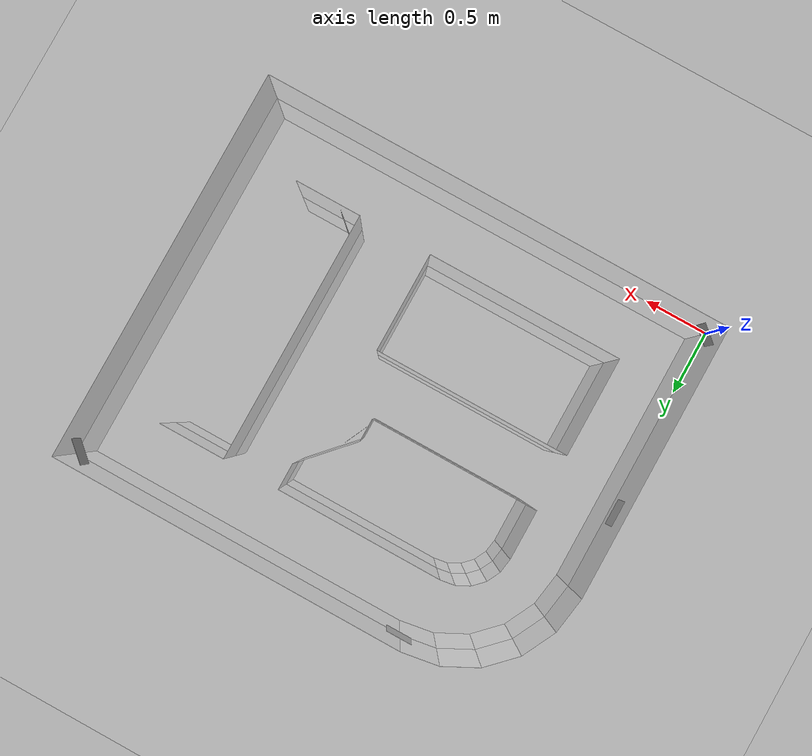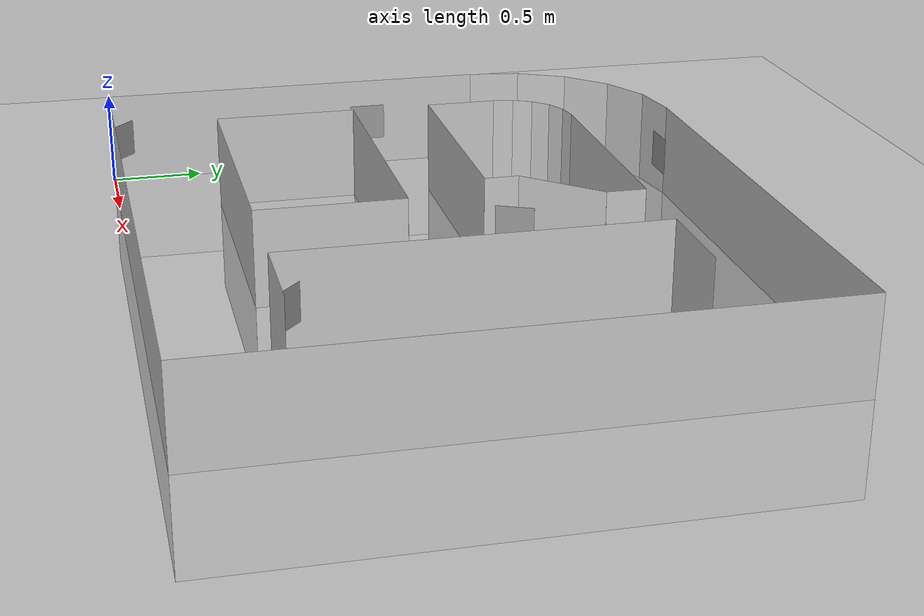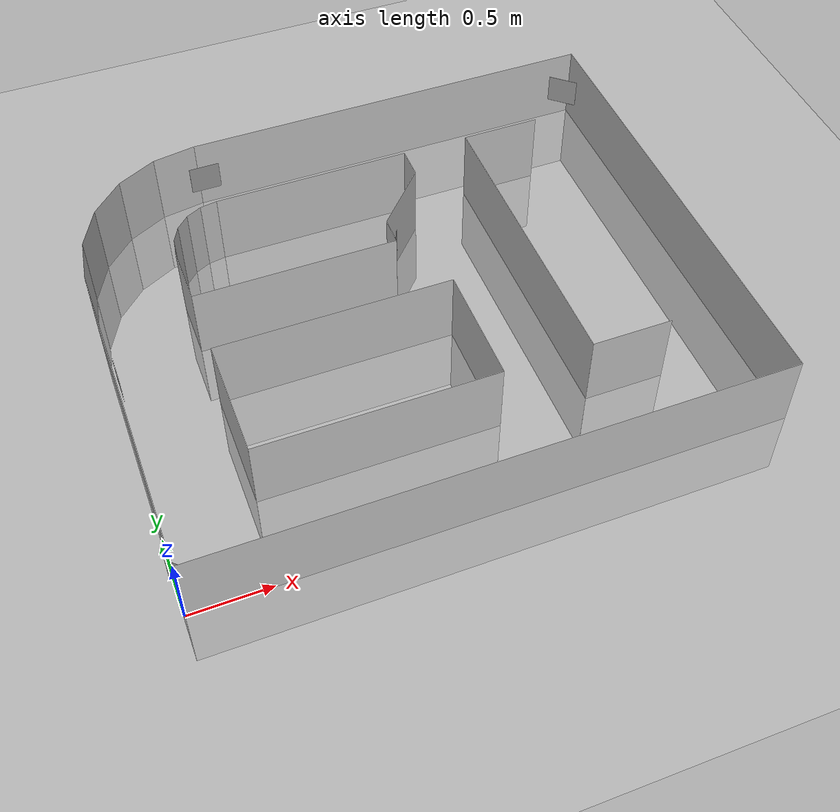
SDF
<sdf version="1.6">
 <world name="default">
  <light name="sun" type="directional">
   <pose>0 0 10 0 -0 0</pose>
   <diffuse>0.8 0.8 0.8 1</diffuse>
   <specular>0.1 0.1 0.1 1</specular>
   <attenuation>
    <range>1000</range>
    <constant>0.9</constant>
    <linear>0.01</linear>
    <quadratic>0.001</quadratic>
   </attenuation>
   <direction>-0.5 0.5 -1</direction>
  </light>
  <model name="ground_plane">
   <static>1</static>
   <link name="link">
    <collision name="collision">
     <geometry><plane><normal>0 0 1</normal><size>100 100</size></plane></geometry>
     <surface><friction><ode><mu>100</mu><mu2>50</mu2></ode></friction></surface>
    </collision>
    <visual name="visual">
     <cast_shadows>0</cast_shadows>
     <geometry><plane><normal>0 0 1</normal><size>100 100</size></plane></geometry>
     <material>
      <script><uri>file://media/materials/scripts/gazebo.material</uri><name>Gazebo/Grey</name></script>
     </material>
    </visual>
   </link>
  </model>
  <model name="wall_0">
   <static>1</static>
   <link name="link">
    <collision name="collision"><geometry><box><size>2.1336 0.001 1</size></box></geometry></collision>
    <visual name="visual">
     <geometry><box><size>2.1336 0.001 1</size></box></geometry>
     <material>
      <script><name>Gazebo/White</name><uri>file://media/materials/scripts/gazebo.material</uri></script>
     </material>
    </visual>
   </link>
   <pose>0 1.0668 0 0 -0 1.5708</pose>
  </model>
  <model name="wall_1">
   <static>1</static>
   <link name="link">
    <collision name="collision"><geometry><box><size>0.286088 0.001 1</size></box></geometry></collision>
    <visual name="visual">
     <geometry><box><size>0.286088 0.001 1</size></box></geometry>
     <material>
      <script><name>Gazebo/White</name><uri>file://media/materials/scripts/gazebo.material</uri></script>
     </material>
    </visual>
   </link>
   <pose>0.022377 2.27489 0 0 -0 1.41372</pose>
  </model>
  <model name="wall_2">
   <static>1</static>
   <link name="link">
    <collision name="collision"><geometry><box><size>0.286088 0.001 1</size></box></geometry></collision>
    <visual name="visual">
     <geometry><box><size>0.286088 0.001 1</size></box></geometry>
     <material>
      <script><name>Gazebo/White</name><uri>file://media/materials/scripts/gazebo.material</uri></script>
     </material>
    </visual>
   </link>
   <pose>0.109695 2.54362 0 0 -0 1.09956</pose>
  </model>
  <model name="wall_3">
   <static>1</static>
   <link name="link">
    <collision name="collision"><geometry><box><size>0.286088 0.001 1</size></box></geometry></collision>
    <visual name="visual">
     <geometry><box><size>0.286088 0.001 1</size></box></geometry>
     <material>
      <script><name>Gazebo/White</name><uri>file://media/materials/scripts/gazebo.material</uri></script>
     </material>
    </visual>
   </link>
   <pose>0.275783 2.77222 0 0 -0 0.785398</pose>
  </model>
  <model name="wall_4">
   <static>1</static>
   <link name="link">
    <collision name="collision"><geometry><box><size>0.286088 0.001 1</size></box></geometry></collision>
    <visual name="visual">
     <geometry><box><size>0.286088 0.001 1</size></box></geometry>
     <material>
      <script><name>Gazebo/White</name><uri>file://media/materials/scripts/gazebo.material</uri></script>
     </material>
    </visual>
   </link>
   <pose>0.504383 2.93831 0 0 -0 0.471239</pose>
  </model>
  <model name="wall_5">
   <static>1</static>
   <link name="link">
    <collision name="collision"><geometry><box><size>0.286088 0.001 1</size></box></geometry></collision>
    <visual name="visual">
     <geometry><box><size>0.286088 0.001 1</size></box></geometry>
     <material>
      <script><name>Gazebo/White</name><uri>file://media/materials/scripts/gazebo.material</uri></script>
     </material>
    </visual>
   </link>
   <pose>0.773119 3.02563 0 0 -0 0.15708</pose>
  </model>
  <model name="wall_6">
   <static>1</static>
   <link name="link">
    <collision name="collision"><geometry><box><size>2.74321 0.001 1</size></box></geometry></collision>
    <visual name="visual">
     <geometry><box><size>2.74321 0.001 1</size></box></geometry>
     <material>
      <script><name>Gazebo/White</name><uri>file://media/materials/scripts/gazebo.material</uri></script>
     </material>
    </visual>
   </link>
   <pose>2.286 3.04801 0 0 -0 0</pose>
  </model>
  <model name="wall_7">
   <static>1</static>
   <link name="link">
    <collision name="collision"><geometry><box><size>3.04801 0.001 1</size></box></geometry></collision>
    <visual name="visual">
     <geometry><box><size>3.04801 0.001 1</size></box></geometry>
     <material>
      <script><name>Gazebo/White</name><uri>file://media/materials/scripts/gazebo.material</uri></script>
     </material>
    </visual>
   </link>
   <pose>3.65761 1.524 0 0 0 -1.5708</pose>
  </model>
  <model name="wall_8">
   <static>1</static>
   <link name="link">
    <collision name="collision"><geometry><box><size>3.65761 0.001 1</size></box></geometry></collision>
    <visual name="visual">
     <geometry><box><size>3.65761 0.001 1</size></box></geometry>
     <material>
      <script><name>Gazebo/White</name><uri>file://media/materials/scripts/gazebo.material</uri></script>
     </material>
    </visual>
   </link>
   <pose>1.8288 0 0 0 0 -3.14159</pose>
  </model>
  <model name="wall_9">
   <static>1</static>
   <link name="link">
    <collision name="collision"><geometry><box><size>0.762002 0.001 1</size></box></geometry></collision>
    <visual name="visual">
     <geometry><box><size>0.762002 0.001 1</size></box></geometry>
     <material>
      <script><name>Gazebo/White</name><uri>file://media/materials/scripts/gazebo.material</uri></script>
     </material>
    </visual>
   </link>
   <pose>0.558801 0.939802 0 0 -0 1.5708</pose>
  </model>
  <model name="wall_10">
   <static>1</static>
   <link name="link">
    <collision name="collision"><geometry><box><size>1.4986 0.001 1</size></box></geometry></collision>
    <visual name="visual">
     <geometry><box><size>1.4986 0.001 1</size></box></geometry>
     <material>
      <script><name>Gazebo/White</name><uri>file://media/materials/scripts/gazebo.material</uri></script>
     </material>
    </visual>
   </link>
   <pose>1.3081 1.3208 0 0 -0 0</pose>
  </model>
  <model name="wall_11">
   <static>1</static>
   <link name="link">
    <collision name="collision"><geometry><box><size>0.762002 0.001 1</size></box></geometry></collision>
    <visual name="visual">
     <geometry><box><size>0.762002 0.001 1</size></box></geometry>
     <material>
      <script><name>Gazebo/White</name><uri>file://media/materials/scripts/gazebo.material</uri></script>
     </material>
    </visual>
   </link>
   <pose>2.0574 0.939802 0 0 0 -1.5708</pose>
  </model>
  <model name="wall_12">
   <static>1</static>
   <link name="link">
    <collision name="collision"><geometry><box><size>1.4986 0.001 1</size></box></geometry></collision>
    <visual name="visual">
     <geometry><box><size>1.4986 0.001 1</size></box></geometry>
     <material>
      <script><name>Gazebo/White</name><uri>file://media/materials/scripts/gazebo.material</uri></script>
     </material>
    </visual>
   </link>
   <pose>1.3081 0.558801 0 0 0 -3.14159</pose>
  </model>
  <model name="wall_13">
   <static>1</static>
   <link name="link">
    <collision name="collision"><geometry><box><size>0.381001 0.001 1</size></box></geometry></collision>
    <visual name="visual">
     <geometry><box><size>0.381001 0.001 1</size></box></geometry>
     <material>
      <script><name>Gazebo/White</name><uri>file://media/materials/scripts/gazebo.material</uri></script>
     </material>
    </visual>
   </link>
   <pose>0.558801 1.9431 0 0 -0 1.5708</pose>
  </model>
  <model name="wall_14">
   <static>1</static>
   <link name="link">
    <collision name="collision"><geometry><box><size>0.111256 0.001 1</size></box></geometry></collision>
    <visual name="visual">
     <geometry><box><size>0.111256 0.001 1</size></box></geometry>
     <material>
      <script><name>Gazebo/White</name><uri>file://media/materials/scripts/gazebo.material</uri></script>
     </material>
    </visual>
   </link>
   <pose>0.567503 2.18855 0 0 -0 1.41372</pose>
  </model>
  <model name="wall_15">
   <static>1</static>
   <link name="link">
    <collision name="collision"><geometry><box><size>0.111256 0.001 1</size></box></geometry></collision>
    <visual name="visual">
     <geometry><box><size>0.111256 0.001 1</size></box></geometry>
     <material>
      <script><name>Gazebo/White</name><uri>file://media/materials/scripts/gazebo.material</uri></script>
     </material>
    </visual>
   </link>
   <pose>0.60146 2.29306 0 0 -0 1.09956</pose>
  </model>
  <model name="wall_16">
   <static>1</static>
   <link name="link">
    <collision name="collision"><geometry><box><size>0.111256 0.001 1</size></box></geometry></collision>
    <visual name="visual">
     <geometry><box><size>0.111256 0.001 1</size></box></geometry>
     <material>
      <script><name>Gazebo/White</name><uri>file://media/materials/scripts/gazebo.material</uri></script>
     </material>
    </visual>
   </link>
   <pose>0.66605 2.38196 0 0 -0 0.785398</pose>
  </model>
  <model name="wall_17">
   <static>1</static>
   <link name="link">
    <collision name="collision"><geometry><box><size>0.111256 0.001 1</size></box></geometry></collision>
    <visual name="visual">
     <geometry><box><size>0.111256 0.001 1</size></box></geometry>
     <material>
      <script><name>Gazebo/White</name><uri>file://media/materials/scripts/gazebo.material</uri></script>
     </material>
    </visual>
   </link>
   <pose>0.75495 2.44655 0 0 -0 0.471239</pose>
  </model>
  <model name="wall_18">
   <static>1</static>
   <link name="link">
    <collision name="collision"><geometry><box><size>0.111256 0.001 1</size></box></geometry></collision>
    <visual name="visual">
     <geometry><box><size>0.111256 0.001 1</size></box></geometry>
     <material>
      <script><name>Gazebo/White</name><uri>file://media/materials/scripts/gazebo.material</uri></script>
     </material>
    </visual>
   </link>
   <pose>0.859458 2.4805 0 0 -0 0.15708</pose>
  </model>
  <model name="wall_19">
   <static>1</static>
   <link name="link">
    <collision name="collision"><geometry><box><size>1.27 0.001 1</size></box></geometry></collision>
    <visual name="visual">
     <geometry><box><size>1.27 0.001 1</size></box></geometry>
     <material>
      <script><name>Gazebo/White</name><uri>file://media/materials/scripts/gazebo.material</uri></script>
     </material>
    </visual>
   </link>
   <pose>1.5494 2.48921 0 0 -0 0</pose>
  </model>
  <model name="wall_20">
   <static>1</static>
   <link name="link">
    <collision name="collision"><geometry><box><size>0.2032 0.001 1</size></box></geometry></collision>
    <visual name="visual">
     <geometry><box><size>0.2032 0.001 1</size></box></geometry>
     <material>
      <script><name>Gazebo/White</name><uri>file://media/materials/scripts/gazebo.material</uri></script>
     </material>
    </visual>
   </link>
   <pose>2.1844 2.38761 0 0 0 -1.5708</pose>
  </model>
  <model name="wall_21">
   <static>1</static>
   <link name="link">
    <collision name="collision"><geometry><box><size>0.485267 0.001 1</size></box></geometry></collision>
    <visual name="visual">
     <geometry><box><size>0.485267 0.001 1</size></box></geometry>
     <material>
      <script><name>Gazebo/White</name><uri>file://media/materials/scripts/gazebo.material</uri></script>
     </material>
    </visual>
   </link>
   <pose>2.0193 2.1082 0 0 0 -2.31917</pose>
  </model>
  <model name="wall_22">
   <static>1</static>
   <link name="link">
    <collision name="collision"><geometry><box><size>0.1778 0.001 1</size></box></geometry></collision>
    <visual name="visual">
     <geometry><box><size>0.1778 0.001 1</size></box></geometry>
     <material>
      <script><name>Gazebo/White</name><uri>file://media/materials/scripts/gazebo.material</uri></script>
     </material>
    </visual>
   </link>
   <pose>1.8542 1.8415 0 0 0 -1.5708</pose>
  </model>
  <model name="wall_23">
   <static>1</static>
   <link name="link">
    <collision name="collision"><geometry><box><size>1.2954 0.001 1</size></box></geometry></collision>
    <visual name="visual">
     <geometry><box><size>1.2954 0.001 1</size></box></geometry>
     <material>
      <script><name>Gazebo/White</name><uri>file://media/materials/scripts/gazebo.material</uri></script>
     </material>
    </visual>
   </link>
   <pose>1.2065 1.7526 0 0 0 -3.14159</pose>
  </model>
  <model name="wall_24">
   <static>1</static>
   <link name="link">
    <collision name="collision"><geometry><box><size>0.508001 0.001 1</size></box></geometry></collision>
    <visual name="visual">
     <geometry><box><size>0.508001 0.001 1</size></box></geometry>
     <material>
      <script><name>Gazebo/White</name><uri>file://media/materials/scripts/gazebo.material</uri></script>
     </material>
    </visual>
   </link>
   <pose>2.87021 2.48921 0 0 -0 0</pose>
  </model>
  <model name="wall_25">
   <static>1</static>
   <link name="link">
    <collision name="collision"><geometry><box><size>0.508001 0.001 1</size></box></geometry></collision>
    <visual name="visual">
     <geometry><box><size>0.508001 0.001 1</size></box></geometry>
     <material>
      <script><name>Gazebo/White</name><uri>file://media/materials/scripts/gazebo.material</uri></script>
     </material>
    </visual>
   </link>
   <pose>2.87021 0.558801 0 0 0 -3.14159</pose>
  </model>
  <model name="wall_26">
   <static>1</static>
   <link name="link">
    <collision name="collision"><geometry><box><size>1.9304 0.001 1</size></box></geometry></collision>
    <visual name="visual">
     <geometry><box><size>1.9304 0.001 1</size></box></geometry>
     <material>
      <script><name>Gazebo/White</name><uri>file://media/materials/scripts/gazebo.material</uri></script>
     </material>
    </visual>
   </link>
   <pose>2.6162 1.524 0 0 -0 1.5708</pose>
  </model>
  <model name="Food1-1">
   <link name="plate">
    <pose>0 0 0.2425 0 -0 0</pose>
    <collision name="collision">
     <geometry><box><size>0.001 0.2 0.2</size></box></geometry>
     <surface><friction><ode><mu>1</mu><mu2>1</mu2></ode></friction></surface>
    </collision>
    <visual name="visual">
     <geometry><box><size>0.001 0.2 0.2</size></box></geometry>
     <material>
      <script>
       <uri>model://foods/materials/scripts</uri>
       <uri>model://foods/materials/textures</uri>
       <name>food1/Diffuse</name>
      </script>
     </material>
    </visual>
    <inertial>
     <inertia><ixx>0.1</ixx><ixy>0</ixy><ixz>0</ixz><iyy>0.1</iyy><iyz>0</iyz><izz>0.1</izz></inertia>
     <mass>0.1</mass>
    </inertial>
   </link>
   <pose>1.9 1.9 0.01 0 -0 2.7</pose>
  </model>
  <model name="Food1-2">
   <link name="plate">
    <pose>0 0 0.2425 0 -0 0</pose>
    <collision name="collision">
     <geometry><box><size>0.001 0.2 0.2</size></box></geometry>
     <surface><friction><ode><mu>1</mu><mu2>1</mu2></ode></friction></surface>
    </collision>
    <visual name="visual">
     <geometry><box><size>0.001 0.2 0.2</size></box></geometry>
     <material>
      <script>
       <uri>model://foods/materials/scripts</uri>
       <uri>model://foods/materials/textures</uri>
       <name>food1/Diffuse</name>
      </script>
     </material>
    </visual>
    <inertial>
     <inertia><ixx>0.1</ixx><ixy>0</ixy><ixz>0</ixz><iyy>0.1</iyy><iyz>0</iyz><izz>0.1</izz></inertia>
     <mass>0.1</mass>
    </inertial>
   </link>
   <pose>0.05 0.08 0.01 0 -0 -2.3</pose>
  </model>
  <model name="Food2-1">
   <link name="plate">
    <pose>0 0 0.2425 0 -0 0</pose>
    <collision name="collision">
     <geometry><box><size>0.001 0.2 0.2</size></box></geometry>
     <surface><friction><ode><mu>1</mu><mu2>1</mu2></ode></friction></surface>
    </collision>
    <visual name="visual">
     <geometry><box><size>0.001 0.2 0.2</size></box></geometry>
     <material>
      <script>
       <uri>model://foods/materials/scripts</uri>
       <uri>model://foods/materials/textures</uri>
       <name>food2/Diffuse</name>
      </script>
     </material>
    </visual>
    <inertial>
     <inertia><ixx>0.1</ixx><ixy>0</ixy><ixz>0</ixz><iyy>0.1</iyy><iyz>0</iyz><izz>0.1</izz></inertia>
     <mass>0.1</mass>
    </inertial>
   </link>
   <pose>2.7 0.63 0.01 0 -0 -2.3</pose>
  </model>
  <model name="Food2-2">
   <link name="plate">
    <pose>0 0 0.2425 0 -0 0</pose>
    <collision name="collision">
     <geometry><box><size>0.001 0.2 0.2</size></box></geometry>
     <surface><friction><ode><mu>1</mu><mu2>1</mu2></ode></friction></surface>
    </collision>
    <visual name="visual">
     <geometry><box><size>0.001 0.2 0.2</size></box></geometry>
     <material>
      <script>
       <uri>model://foods/materials/scripts</uri>
       <uri>model://foods/materials/textures</uri>
       <name>food2/Diffuse</name>
      </script>
     </material>
    </visual>
    <inertial>
     <inertia><ixx>0.1</ixx><ixy>0</ixy><ixz>0</ixz><iyy>0.1</iyy><iyz>0</iyz><izz>0.1</izz></inertia>
     <mass>0.1</mass>
    </inertial>
   </link>
   <pose>0.95 3.0 0.01 0 -0 -1.57</pose>
  </model>
  <model name="Food3-1">
   <link name="plate">
    <pose>0 0 0.2425 0 -0 0</pose>
    <collision name="collision">
     <geometry><box><size>0.001 0.2 0.2</size></box></geometry>
     <surface><friction><ode><mu>1</mu><mu2>1</mu2></ode></friction></surface>
    </collision>
    <visual name="visual">
     <geometry><box><size>0.001 0.2 0.2</size></box></geometry>
     <material>
      <script>
       <uri>model://foods/materials/scripts</uri>
       <uri>model://foods/materials/textures</uri>
       <name>food3/Diffuse</name>
      </script>
     </material>
    </visual>
    <inertial>
     <inertia><ixx>0.1</ixx><ixy>0</ixy><ixz>0</ixz><iyy>0.1</iyy><iyz>0</iyz><izz>0.1</izz></inertia>
     <mass>0.1</mass>
    </inertial>
   </link>
   <pose>3.57 2.97 0.01 0 -0 -2.3</pose>
  </model>
  <model name="Food3-2">
   <link name="plate">
    <pose>0 0 0.2425 0 -0 0</pose>
    <collision name="collision">
     <geometry><box><size>0.001 0.2 0.2</size></box></geometry>
     <surface><friction><ode><mu>1</mu><mu2>1</mu2></ode></friction></surface>
    </collision>
    <visual name="visual">
     <geometry><box><size>0.001 0.2 0.2</size></box></geometry>
     <material>
      <script>
       <uri>model://foods/materials/scripts</uri>
       <uri>model://foods/materials/textures</uri>
       <name>food3/Diffuse</name>
      </script>
     </material>
    </visual>
    <inertial>
     <inertia><ixx>0.1</ixx><ixy>0</ixy><ixz>0</ixz><iyy>0.1</iyy><iyz>0</iyz><izz>0.1</izz></inertia>
     <mass>0.1</mass>
    </inertial>
   </link>
   <pose>0.02 1.5 0.01 0 -0 3.14159</pose>
  </model>
  <gravity>0 0 -9.8</gravity>
  <magnetic_field>6e-06 2.3e-05 -4.2e-05</magnetic_field>
  <atmosphere type="adiabatic"/>
  <physics name="default_physics" default="0" type="ode">
   <max_step_size>0.001</max_step_size>
   <real_time_factor>1</real_time_factor>
   <real_time_update_rate>1000</real_time_update_rate>
  </physics>
  <scene><ambient>0.4 0.4 0.4 1</ambient><background>0.7 0.7 0.7 1</background><shadows>1</shadows></scene>
  <spherical_coordinates>
   <surface_model>EARTH_WGS84</surface_model>
   <latitude_deg>0</latitude_deg>
   <longitude_deg>0</longitude_deg>
   <elevation>0</elevation>
   <heading_deg>0</heading_deg>
  </spherical_coordinates>
 </world>
</sdf>
